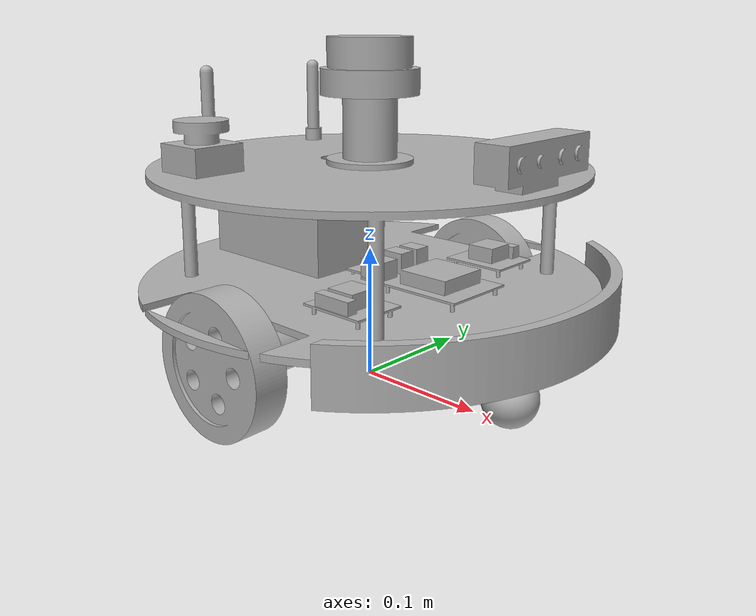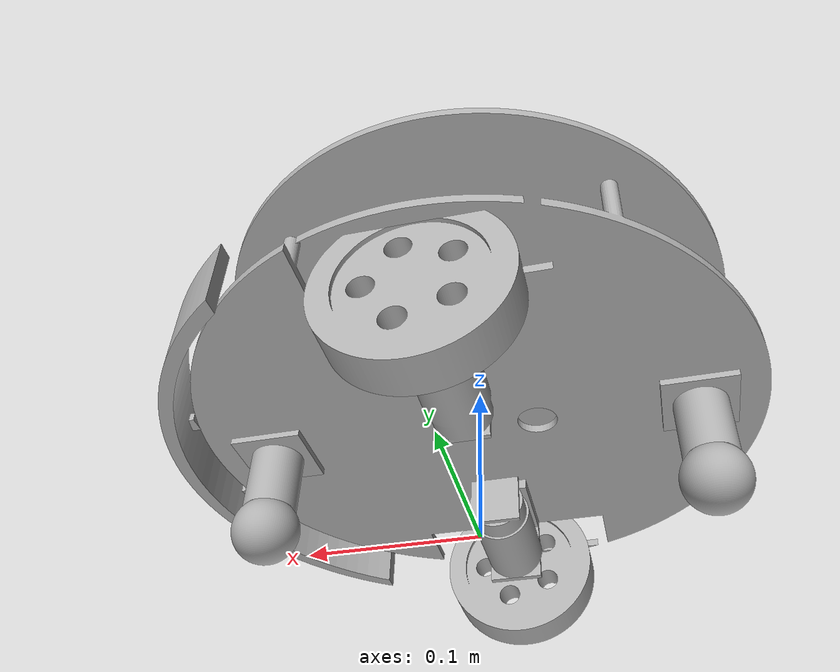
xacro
<?xml version="1.0" ?>
<robot name="Mobile" xmlns:xacro="http://www.ros.org/wiki/xacro">

<xacro:include filename="$(find mobile_robot_2_description)/urdf/materials.xacro" />
<xacro:include filename="$(find mobile_robot_2_description)/urdf/Mobile.trans" />
<xacro:include filename="$(find mobile_robot_2_description)/urdf/Mobile.gazebo" />
<link name="base_link">
  <inertial>
    <origin xyz="0.00017454037512653657 -1.3598256105074067e-18 0.11794017355956482" rpy="0 0 0"/>
    <mass value="2.4493354501778066"/>
    <inertia ixx="0.020018" iyy="0.021687" izz="0.033134" ixy="0.0" iyz="-0.0" ixz="-1e-06"/>
  </inertial>
  <visual>
    <origin xyz="0 0 0" rpy="0 0 0"/>
    <geometry>
      <mesh filename="package://mobile_robot_2_description/meshes/base_link.stl" scale="0.001 0.001 0.001"/>
    </geometry>
    <material name="silver"/>
  </visual>
  <collision>
    <origin xyz="0 0 0" rpy="0 0 0"/>
    <geometry>
      <mesh filename="package://mobile_robot_2_description/meshes/base_link.stl" scale="0.001 0.001 0.001"/>
    </geometry>
  </collision>
</link>

<link name="left_wheel_1">
  <inertial>
    <origin xyz="-3.6145245860839465e-14 -0.00037537021934158643 0.0" rpy="0 0 0"/>
    <mass value="0.16101730491149918"/>
    <inertia ixx="0.000114" iyy="0.000212" izz="0.000114" ixy="-0.0" iyz="0.0" ixz="0.0"/>
  </inertial>
  <visual>
    <origin xyz="-0.0 -0.14 -0.05" rpy="0 0 0"/>
    <geometry>
      <mesh filename="package://mobile_robot_2_description/meshes/left_wheel_1.stl" scale="0.001 0.001 0.001"/>
    </geometry>
    <material name="silver"/>
  </visual>
  <collision>
    <origin xyz="-0.0 -0.14 -0.05" rpy="0 0 0"/>
    <geometry>
      <mesh filename="package://mobile_robot_2_description/meshes/left_wheel_1.stl" scale="0.001 0.001 0.001"/>
    </geometry>
  </collision>
</link>

<link name="right_wheel_1">
  <inertial>
    <origin xyz="-7.418352716358315e-14 0.00037537021934158643 0.0" rpy="0 0 0"/>
    <mass value="0.1610173049114984"/>
    <inertia ixx="0.000114" iyy="0.000212" izz="0.000114" ixy="-0.0" iyz="0.0" ixz="-0.0"/>
  </inertial>
  <visual>
    <origin xyz="-0.0 0.14 -0.05" rpy="0 0 0"/>
    <geometry>
      <mesh filename="package://mobile_robot_2_description/meshes/right_wheel_1.stl" scale="0.001 0.001 0.001"/>
    </geometry>
    <material name="silver"/>
  </visual>
  <collision>
    <origin xyz="-0.0 0.14 -0.05" rpy="0 0 0"/>
    <geometry>
      <mesh filename="package://mobile_robot_2_description/meshes/right_wheel_1.stl" scale="0.001 0.001 0.001"/>
    </geometry>
  </collision>
</link>

<link name="left_motor_1">
  <inertial>
    <origin xyz="-2.3662797839008177e-15 -0.0035846879961074635 6.938893903907228e-18" rpy="0 0 0"/>
    <mass value="0.1765658885286299"/>
    <inertia ixx="7.7e-05" iyy="3e-05" izz="7.7e-05" ixy="0.0" iyz="0.0" ixz="0.0"/>
  </inertial>
  <visual>
    <origin xyz="-0.0 -0.087 -0.05" rpy="0 0 0"/>
    <geometry>
      <mesh filename="package://mobile_robot_2_description/meshes/left_motor_1.stl" scale="0.001 0.001 0.001"/>
    </geometry>
    <material name="silver"/>
  </visual>
  <collision>
    <origin xyz="-0.0 -0.087 -0.05" rpy="0 0 0"/>
    <geometry>
      <mesh filename="package://mobile_robot_2_description/meshes/left_motor_1.stl" scale="0.001 0.001 0.001"/>
    </geometry>
  </collision>
</link>

<link name="right_motor_1">
  <inertial>
    <origin xyz="-2.366279783900818e-15 0.0035846879961074635 6.938893903907228e-18" rpy="0 0 0"/>
    <mass value="0.17656588852862987"/>
    <inertia ixx="7.7e-05" iyy="3e-05" izz="7.7e-05" ixy="-0.0" iyz="-0.0" ixz="-0.0"/>
  </inertial>
  <visual>
    <origin xyz="-0.0 0.087 -0.05" rpy="0 0 0"/>
    <geometry>
      <mesh filename="package://mobile_robot_2_description/meshes/right_motor_1.stl" scale="0.001 0.001 0.001"/>
    </geometry>
    <material name="silver"/>
  </visual>
  <collision>
    <origin xyz="-0.0 0.087 -0.05" rpy="0 0 0"/>
    <geometry>
      <mesh filename="package://mobile_robot_2_description/meshes/right_motor_1.stl" scale="0.001 0.001 0.001"/>
    </geometry>
  </collision>
</link>

<link name="front_caster_1">
  <inertial>
    <origin xyz="-2.7755575615628914e-17 4.045688931602918e-18 -0.016884686640517024" rpy="0 0 0"/>
    <mass value="0.03723347556567059"/>
    <inertia ixx="8e-06" iyy="8e-06" izz="7e-06" ixy="0.0" iyz="-0.0" ixz="0.0"/>
  </inertial>
  <visual>
    <origin xyz="-0.13 -0.0 -0.075" rpy="0 0 0"/>
    <geometry>
      <mesh filename="package://mobile_robot_2_description/meshes/front_caster_1.stl" scale="0.001 0.001 0.001"/>
    </geometry>
    <material name="silver"/>
  </visual>
  <collision>
    <origin xyz="-0.13 -0.0 -0.075" rpy="0 0 0"/>
    <geometry>
      <mesh filename="package://mobile_robot_2_description/meshes/front_caster_1.stl" scale="0.001 0.001 0.001"/>
    </geometry>
  </collision>
</link>

<link name="rear_caster_1">
  <inertial>
    <origin xyz="2.7755575615628914e-17 4.045688931602918e-18 -0.016884686640517024" rpy="0 0 0"/>
    <mass value="0.03723347556567059"/>
    <inertia ixx="8e-06" iyy="8e-06" izz="7e-06" ixy="0.0" iyz="-0.0" ixz="0.0"/>
  </inertial>
  <visual>
    <origin xyz="0.13 -0.0 -0.075" rpy="0 0 0"/>
    <geometry>
      <mesh filename="package://mobile_robot_2_description/meshes/rear_caster_1.stl" scale="0.001 0.001 0.001"/>
    </geometry>
    <material name="silver"/>
  </visual>
  <collision>
    <origin xyz="0.13 -0.0 -0.075" rpy="0 0 0"/>
    <geometry>
      <mesh filename="package://mobile_robot_2_description/meshes/rear_caster_1.stl" scale="0.001 0.001 0.001"/>
    </geometry>
  </collision>
</link>

<link name="front_caster_ball_1">
  <inertial>
    <origin xyz="0.0 0.0 0.0" rpy="0 0 0"/>
    <mass value="0.09047786842338602"/>
    <inertia ixx="1.4e-05" iyy="1.4e-05" izz="1.4e-05" ixy="-0.0" iyz="0.0" ixz="0.0"/>
  </inertial>
  <visual>
    <origin xyz="-0.13 -0.0 -0.02" rpy="0 0 0"/>
    <geometry>
      <mesh filename="package://mobile_robot_2_description/meshes/front_caster_ball_1.stl" scale="0.001 0.001 0.001"/>
    </geometry>
    <material name="silver"/>
  </visual>
  <collision>
    <origin xyz="-0.13 -0.0 -0.02" rpy="0 0 0"/>
    <geometry>
      <mesh filename="package://mobile_robot_2_description/meshes/front_caster_ball_1.stl" scale="0.001 0.001 0.001"/>
    </geometry>
  </collision>
</link>

<link name="rear_caster_ball_1">
  <inertial>
    <origin xyz="0.0 0.0 0.0" rpy="0 0 0"/>
    <mass value="0.09047786842338602"/>
    <inertia ixx="1.4e-05" iyy="1.4e-05" izz="1.4e-05" ixy="-0.0" iyz="0.0" ixz="0.0"/>
  </inertial>
  <visual>
    <origin xyz="0.13 -0.0 -0.02" rpy="0 0 0"/>
    <geometry>
      <mesh filename="package://mobile_robot_2_description/meshes/rear_caster_ball_1.stl" scale="0.001 0.001 0.001"/>
    </geometry>
    <material name="silver"/>
  </visual>
  <collision>
    <origin xyz="0.13 -0.0 -0.02" rpy="0 0 0"/>
    <geometry>
      <mesh filename="package://mobile_robot_2_description/meshes/rear_caster_ball_1.stl" scale="0.001 0.001 0.001"/>
    </geometry>
  </collision>
</link>

<link name="front_bumper_1">
  <inertial>
    <origin xyz="-0.01910695984035818 -3.638816113715874e-16 9.649867056010786e-06" rpy="0 0 0"/>
    <mass value="0.11922256008223256"/>
    <inertia ixx="0.001019" iyy="8.4e-05" izz="0.001071" ixy="-0.0" iyz="0.0" ixz="-0.0"/>
  </inertial>
  <visual>
    <origin xyz="-0.171 -0.0 -0.075" rpy="0 0 0"/>
    <geometry>
      <mesh filename="package://mobile_robot_2_description/meshes/front_bumper_1.stl" scale="0.001 0.001 0.001"/>
    </geometry>
    <material name="silver"/>
  </visual>
  <collision>
    <origin xyz="-0.171 -0.0 -0.075" rpy="0 0 0"/>
    <geometry>
      <mesh filename="package://mobile_robot_2_description/meshes/front_bumper_1.stl" scale="0.001 0.001 0.001"/>
    </geometry>
  </collision>
</link>

<link name="battery_1">
  <inertial>
    <origin xyz="6.763325865494219e-05 0.0 0.022533140296740903" rpy="0 0 0"/>
    <mass value="0.40122272"/>
    <inertia ixx="0.000232" iyy="0.00055" izz="0.000646" ixy="0.0" iyz="-0.0" ixz="-1e-06"/>
  </inertial>
  <visual>
    <origin xyz="0.08 -0.0 -0.08" rpy="0 0 0"/>
    <geometry>
      <mesh filename="package://mobile_robot_2_description/meshes/battery_1.stl" scale="0.001 0.001 0.001"/>
    </geometry>
    <material name="silver"/>
  </visual>
  <collision>
    <origin xyz="0.08 -0.0 -0.08" rpy="0 0 0"/>
    <geometry>
      <mesh filename="package://mobile_robot_2_description/meshes/battery_1.stl" scale="0.001 0.001 0.001"/>
    </geometry>
  </collision>
</link>

<link name="imu_1">
  <inertial>
    <origin xyz="4.644566323037454e-14 0.0 -0.002210699166780211" rpy="0 0 0"/>
    <mass value="0.0023026507602741325"/>
    <inertia ixx="0.0" iyy="0.0" izz="0.0" ixy="0.0" iyz="-0.0" ixz="0.0"/>
  </inertial>
  <visual>
    <origin xyz="-0.0 -0.0 -0.0856" rpy="0 0 0"/>
    <geometry>
      <mesh filename="package://mobile_robot_2_description/meshes/imu_1.stl" scale="0.001 0.001 0.001"/>
    </geometry>
    <material name="silver"/>
  </visual>
  <collision>
    <origin xyz="-0.0 -0.0 -0.0856" rpy="0 0 0"/>
    <geometry>
      <mesh filename="package://mobile_robot_2_description/meshes/imu_1.stl" scale="0.001 0.001 0.001"/>
    </geometry>
  </collision>
</link>

<link name="compute_board_1">
  <inertial>
    <origin xyz="-0.00070809707100606 -4.1508829818171984e-05 0.005652390670969981" rpy="0 0 0"/>
    <mass value="0.07060907312585667"/>
    <inertia ixx="1.5e-05" iyy="3.4e-05" izz="4.6e-05" ixy="-0.0" iyz="-0.0" ixz="1e-06"/>
  </inertial>
  <visual>
    <origin xyz="-0.06 -0.0 -0.086" rpy="0 0 0"/>
    <geometry>
      <mesh filename="package://mobile_robot_2_description/meshes/compute_board_1.stl" scale="0.001 0.001 0.001"/>
    </geometry>
    <material name="silver"/>
  </visual>
  <collision>
    <origin xyz="-0.06 -0.0 -0.086" rpy="0 0 0"/>
    <geometry>
      <mesh filename="package://mobile_robot_2_description/meshes/compute_board_1.stl" scale="0.001 0.001 0.001"/>
    </geometry>
  </collision>
</link>

<link name="motor_driver_1">
  <inertial>
    <origin xyz="1.7034984534092246e-14 0.0014616756865913488 0.005075601041051633" rpy="0 0 0"/>
    <mass value="0.024540601125856657"/>
    <inertia ixx="3e-06" iyy="3e-06" izz="5e-06" ixy="0.0" iyz="-0.0" ixz="0.0"/>
  </inertial>
  <visual>
    <origin xyz="-0.055 -0.075 -0.086" rpy="0 0 0"/>
    <geometry>
      <mesh filename="package://mobile_robot_2_description/meshes/motor_driver_1.stl" scale="0.001 0.001 0.001"/>
    </geometry>
    <material name="silver"/>
  </visual>
  <collision>
    <origin xyz="-0.055 -0.075 -0.086" rpy="0 0 0"/>
    <geometry>
      <mesh filename="package://mobile_robot_2_description/meshes/motor_driver_1.stl" scale="0.001 0.001 0.001"/>
    </geometry>
  </collision>
</link>

<link name="power_board_1">
  <inertial>
    <origin xyz="1.7034984534092246e-14 -0.0014616756865913488 0.005075601041051633" rpy="0 0 0"/>
    <mass value="0.024540601125856657"/>
    <inertia ixx="3e-06" iyy="3e-06" izz="5e-06" ixy="-0.0" iyz="0.0" ixz="0.0"/>
  </inertial>
  <visual>
    <origin xyz="-0.055 0.075 -0.086" rpy="0 0 0"/>
    <geometry>
      <mesh filename="package://mobile_robot_2_description/meshes/power_board_1.stl" scale="0.001 0.001 0.001"/>
    </geometry>
    <material name="silver"/>
  </visual>
  <collision>
    <origin xyz="-0.055 0.075 -0.086" rpy="0 0 0"/>
    <geometry>
      <mesh filename="package://mobile_robot_2_description/meshes/power_board_1.stl" scale="0.001 0.001 0.001"/>
    </geometry>
  </collision>
</link>

<link name="lidar_mount_1">
  <inertial>
    <origin xyz="-8.043128639705435e-18 -8.043128639705435e-18 0.022448079658605985" rpy="0 0 0"/>
    <mass value="0.1908178245049211"/>
    <inertia ixx="7e-05" iyy="7e-05" izz="4.9e-05" ixy="-0.0" iyz="-0.0" ixz="-0.0"/>
  </inertial>
  <visual>
    <origin xyz="-0.0 -0.0 -0.165" rpy="0 0 0"/>
    <geometry>
      <mesh filename="package://mobile_robot_2_description/meshes/lidar_mount_1.stl" scale="0.001 0.001 0.001"/>
    </geometry>
    <material name="silver"/>
  </visual>
  <collision>
    <origin xyz="-0.0 -0.0 -0.165" rpy="0 0 0"/>
    <geometry>
      <mesh filename="package://mobile_robot_2_description/meshes/lidar_mount_1.stl" scale="0.001 0.001 0.001"/>
    </geometry>
  </collision>
</link>

<link name="lidar_1">
  <inertial>
    <origin xyz="-3.807408854977555e-19 -1.2691362849925186e-19 -0.011057897985522758" rpy="0 0 0"/>
    <mass value="0.1483637551010028"/>
    <inertia ixx="6.4e-05" iyy="6.4e-05" izz="8.6e-05" ixy="-0.0" iyz="0.0" ixz="0.0"/>
  </inertial>
  <visual>
    <origin xyz="-0.0 -0.0 -0.245" rpy="0 0 0"/>
    <geometry>
      <mesh filename="package://mobile_robot_2_description/meshes/lidar_1.stl" scale="0.001 0.001 0.001"/>
    </geometry>
    <material name="silver"/>
  </visual>
  <collision>
    <origin xyz="-0.0 -0.0 -0.245" rpy="0 0 0"/>
    <geometry>
      <mesh filename="package://mobile_robot_2_description/meshes/lidar_1.stl" scale="0.001 0.001 0.001"/>
    </geometry>
  </collision>
</link>

<link name="depth_camera_1">
  <inertial>
    <origin xyz="-0.01285896316562865 5.217942093631856e-06 -0.0016795369505537283" rpy="0 0 0"/>
    <mass value="0.16976107605473045"/>
    <inertia ixx="0.000117" iyy="2.1e-05" izz="0.000114" ixy="-0.0" iyz="-0.0" ixz="-1e-06"/>
  </inertial>
  <visual>
    <origin xyz="-0.1525 -0.0 -0.1855" rpy="0 0 0"/>
    <geometry>
      <mesh filename="package://mobile_robot_2_description/meshes/depth_camera_1.stl" scale="0.001 0.001 0.001"/>
    </geometry>
    <material name="silver"/>
  </visual>
  <collision>
    <origin xyz="-0.1525 -0.0 -0.1855" rpy="0 0 0"/>
    <geometry>
      <mesh filename="package://mobile_robot_2_description/meshes/depth_camera_1.stl" scale="0.001 0.001 0.001"/>
    </geometry>
  </collision>
</link>

<link name="left_antenna_1">
  <inertial>
    <origin xyz="1.3877787807814457e-17 6.938893903907228e-18 0.029614793678665513" rpy="0 0 0"/>
    <mass value="0.0063216174573085026"/>
    <inertia ixx="3e-06" iyy="3e-06" izz="0.0" ixy="-0.0" iyz="0.0" ixz="0.0"/>
  </inertial>
  <visual>
    <origin xyz="0.12 -0.055 -0.165" rpy="0 0 0"/>
    <geometry>
      <mesh filename="package://mobile_robot_2_description/meshes/left_antenna_1.stl" scale="0.001 0.001 0.001"/>
    </geometry>
    <material name="silver"/>
  </visual>
  <collision>
    <origin xyz="0.12 -0.055 -0.165" rpy="0 0 0"/>
    <geometry>
      <mesh filename="package://mobile_robot_2_description/meshes/left_antenna_1.stl" scale="0.001 0.001 0.001"/>
    </geometry>
  </collision>
</link>

<link name="right_antenna_1">
  <inertial>
    <origin xyz="1.3877787807814457e-17 -6.938893903907228e-18 0.029614793678665513" rpy="0 0 0"/>
    <mass value="0.0063216174573085026"/>
    <inertia ixx="3e-06" iyy="3e-06" izz="0.0" ixy="0.0" iyz="-0.0" ixz="0.0"/>
  </inertial>
  <visual>
    <origin xyz="0.12 0.055 -0.165" rpy="0 0 0"/>
    <geometry>
      <mesh filename="package://mobile_robot_2_description/meshes/right_antenna_1.stl" scale="0.001 0.001 0.001"/>
    </geometry>
    <material name="silver"/>
  </visual>
  <collision>
    <origin xyz="0.12 0.055 -0.165" rpy="0 0 0"/>
    <geometry>
      <mesh filename="package://mobile_robot_2_description/meshes/right_antenna_1.stl" scale="0.001 0.001 0.001"/>
    </geometry>
  </collision>
</link>

<link name="estop_1">
  <inertial>
    <origin xyz="6.938893903907228e-18 1.3877787807814457e-17 0.015599920454745592" rpy="0 0 0"/>
    <mass value="0.04737355637973288"/>
    <inertia ixx="1.1e-05" iyy="1.1e-05" izz="1.1e-05" ixy="-0.0" iyz="0.0" ixz="0.0"/>
  </inertial>
  <visual>
    <origin xyz="0.06 0.105 -0.165" rpy="0 0 0"/>
    <geometry>
      <mesh filename="package://mobile_robot_2_description/meshes/estop_1.stl" scale="0.001 0.001 0.001"/>
    </geometry>
    <material name="silver"/>
  </visual>
  <collision>
    <origin xyz="0.06 0.105 -0.165" rpy="0 0 0"/>
    <geometry>
      <mesh filename="package://mobile_robot_2_description/meshes/estop_1.stl" scale="0.001 0.001 0.001"/>
    </geometry>
  </collision>
</link>

<joint name="left_wheel_joint" type="continuous">
  <origin xyz="0.0 0.14 0.05" rpy="0 0 0"/>
  <parent link="base_link"/>
  <child link="left_wheel_1"/>
  <axis xyz="0.0 1.0 0.0"/>
</joint>

<joint name="right_wheel_joint" type="continuous">
  <origin xyz="0.0 -0.14 0.05" rpy="0 0 0"/>
  <parent link="base_link"/>
  <child link="right_wheel_1"/>
  <axis xyz="0.0 1.0 0.0"/>
</joint>

<joint name="left_motor_joint" type="fixed">
  <origin xyz="0.0 0.087 0.05" rpy="0 0 0"/>
  <parent link="base_link"/>
  <child link="left_motor_1"/>
</joint>

<joint name="right_motor_joint" type="fixed">
  <origin xyz="0.0 -0.087 0.05" rpy="0 0 0"/>
  <parent link="base_link"/>
  <child link="right_motor_1"/>
</joint>

<joint name="front_caster_joint" type="fixed">
  <origin xyz="0.13 0.0 0.075" rpy="0 0 0"/>
  <parent link="base_link"/>
  <child link="front_caster_1"/>
</joint>

<joint name="rear_caster_joint" type="fixed">
  <origin xyz="-0.13 0.0 0.075" rpy="0 0 0"/>
  <parent link="base_link"/>
  <child link="rear_caster_1"/>
</joint>

<joint name="front_caster_ball_joint" type="fixed">
  <origin xyz="0.0 0.0 -0.055" rpy="0 0 0"/>
  <parent link="front_caster_1"/>
  <child link="front_caster_ball_1"/>
</joint>

<joint name="rear_caster_ball_joint" type="fixed">
  <origin xyz="0.0 0.0 -0.055" rpy="0 0 0"/>
  <parent link="rear_caster_1"/>
  <child link="rear_caster_ball_1"/>
</joint>

<joint name="front_bumper_joint" type="fixed">
  <origin xyz="0.171 0.0 0.075" rpy="0 0 0"/>
  <parent link="base_link"/>
  <child link="front_bumper_1"/>
</joint>

<joint name="battery_joint" type="fixed">
  <origin xyz="-0.08 0.0 0.08" rpy="0 0 0"/>
  <parent link="base_link"/>
  <child link="battery_1"/>
</joint>

<joint name="imu_joint" type="fixed">
  <origin xyz="0.0 0.0 0.0856" rpy="0 0 0"/>
  <parent link="base_link"/>
  <child link="imu_1"/>
</joint>

<joint name="compute_board_joint" type="fixed">
  <origin xyz="0.06 0.0 0.086" rpy="0 0 0"/>
  <parent link="base_link"/>
  <child link="compute_board_1"/>
</joint>

<joint name="motor_driver_joint" type="fixed">
  <origin xyz="0.055 0.075 0.086" rpy="0 0 0"/>
  <parent link="base_link"/>
  <child link="motor_driver_1"/>
</joint>

<joint name="power_board_joint" type="fixed">
  <origin xyz="0.055 -0.075 0.086" rpy="0 0 0"/>
  <parent link="base_link"/>
  <child link="power_board_1"/>
</joint>

<joint name="lidar_mount_joint" type="fixed">
  <origin xyz="0.0 0.0 0.165" rpy="0 0 0"/>
  <parent link="base_link"/>
  <child link="lidar_mount_1"/>
</joint>

<joint name="lidar_joint" type="fixed">
  <origin xyz="0.0 0.0 0.08" rpy="0 0 0"/>
  <parent link="lidar_mount_1"/>
  <child link="lidar_1"/>
</joint>

<joint name="depth_camera_joint" type="fixed">
  <origin xyz="0.1525 0.0 0.1855" rpy="0 0 0"/>
  <parent link="base_link"/>
  <child link="depth_camera_1"/>
</joint>

<joint name="left_antenna_joint" type="fixed">
  <origin xyz="-0.12 0.055 0.165" rpy="0 0 0"/>
  <parent link="base_link"/>
  <child link="left_antenna_1"/>
</joint>

<joint name="right_antenna_joint" type="fixed">
  <origin xyz="-0.12 -0.055 0.165" rpy="0 0 0"/>
  <parent link="base_link"/>
  <child link="right_antenna_1"/>
</joint>

<joint name="estop_joint" type="fixed">
  <origin xyz="-0.06 -0.105 0.165" rpy="0 0 0"/>
  <parent link="base_link"/>
  <child link="estop_1"/>
</joint>

</robot>

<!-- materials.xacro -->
<robot name="Mobile" xmlns:xacro="http://www.ros.org/wiki/xacro" >

<material name="silver">
  <color rgba="0.700 0.700 0.700 1.000"/>
</material>

</robot>

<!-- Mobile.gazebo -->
<robot name="Mobile" xmlns:xacro="http://www.ros.org/wiki/xacro" >

<xacro:property name="body_color" value="Gazebo/Silver" />

<gazebo>
  <plugin name="control" filename="libgazebo_ros_control.so"/>
</gazebo>
<gazebo reference="base_link">
  <material>${body_color}</material>
  <mu1>0.2</mu1>
  <mu2>0.2</mu2>
  <selfCollide>true</selfCollide>
  <gravity>true</gravity>
</gazebo>

<gazebo reference="left_wheel_1">
  <material>${body_color}</material>
  <mu1>0.2</mu1>
  <mu2>0.2</mu2>
  <selfCollide>true</selfCollide>
</gazebo>

<gazebo reference="right_wheel_1">
  <material>${body_color}</material>
  <mu1>0.2</mu1>
  <mu2>0.2</mu2>
  <selfCollide>true</selfCollide>
</gazebo>

<gazebo reference="left_motor_1">
  <material>${body_color}</material>
  <mu1>0.2</mu1>
  <mu2>0.2</mu2>
  <selfCollide>true</selfCollide>
</gazebo>

<gazebo reference="right_motor_1">
  <material>${body_color}</material>
  <mu1>0.2</mu1>
  <mu2>0.2</mu2>
  <selfCollide>true</selfCollide>
</gazebo>

<gazebo reference="front_caster_1">
  <material>${body_color}</material>
  <mu1>0.2</mu1>
  <mu2>0.2</mu2>
  <selfCollide>true</selfCollide>
</gazebo>

<gazebo reference="rear_caster_1">
  <material>${body_color}</material>
  <mu1>0.2</mu1>
  <mu2>0.2</mu2>
  <selfCollide>true</selfCollide>
</gazebo>

<gazebo reference="front_caster_ball_1">
  <material>${body_color}</material>
  <mu1>0.2</mu1>
  <mu2>0.2</mu2>
  <selfCollide>true</selfCollide>
</gazebo>

<gazebo reference="rear_caster_ball_1">
  <material>${body_color}</material>
  <mu1>0.2</mu1>
  <mu2>0.2</mu2>
  <selfCollide>true</selfCollide>
</gazebo>

<gazebo reference="front_bumper_1">
  <material>${body_color}</material>
  <mu1>0.2</mu1>
  <mu2>0.2</mu2>
  <selfCollide>true</selfCollide>
</gazebo>

<gazebo reference="battery_1">
  <material>${body_color}</material>
  <mu1>0.2</mu1>
  <mu2>0.2</mu2>
  <selfCollide>true</selfCollide>
</gazebo>

<gazebo reference="imu_1">
  <material>${body_color}</material>
  <mu1>0.2</mu1>
  <mu2>0.2</mu2>
  <selfCollide>true</selfCollide>
</gazebo>

<gazebo reference="compute_board_1">
  <material>${body_color}</material>
  <mu1>0.2</mu1>
  <mu2>0.2</mu2>
  <selfCollide>true</selfCollide>
</gazebo>

<gazebo reference="motor_driver_1">
  <material>${body_color}</material>
  <mu1>0.2</mu1>
  <mu2>0.2</mu2>
  <selfCollide>true</selfCollide>
</gazebo>

<gazebo reference="power_board_1">
  <material>${body_color}</material>
  <mu1>0.2</mu1>
  <mu2>0.2</mu2>
  <selfCollide>true</selfCollide>
</gazebo>

<gazebo reference="lidar_mount_1">
  <material>${body_color}</material>
  <mu1>0.2</mu1>
  <mu2>0.2</mu2>
  <selfCollide>true</selfCollide>
</gazebo>

<gazebo reference="lidar_1">
  <material>${body_color}</material>
  <mu1>0.2</mu1>
  <mu2>0.2</mu2>
  <selfCollide>true</selfCollide>
</gazebo>

<gazebo reference="depth_camera_1">
  <material>${body_color}</material>
  <mu1>0.2</mu1>
  <mu2>0.2</mu2>
  <selfCollide>true</selfCollide>
</gazebo>

<gazebo reference="left_antenna_1">
  <material>${body_color}</material>
  <mu1>0.2</mu1>
  <mu2>0.2</mu2>
  <selfCollide>true</selfCollide>
</gazebo>

<gazebo reference="right_antenna_1">
  <material>${body_color}</material>
  <mu1>0.2</mu1>
  <mu2>0.2</mu2>
  <selfCollide>true</selfCollide>
</gazebo>

<gazebo reference="estop_1">
  <material>${body_color}</material>
  <mu1>0.2</mu1>
  <mu2>0.2</mu2>
  <selfCollide>true</selfCollide>
</gazebo>

</robot>
